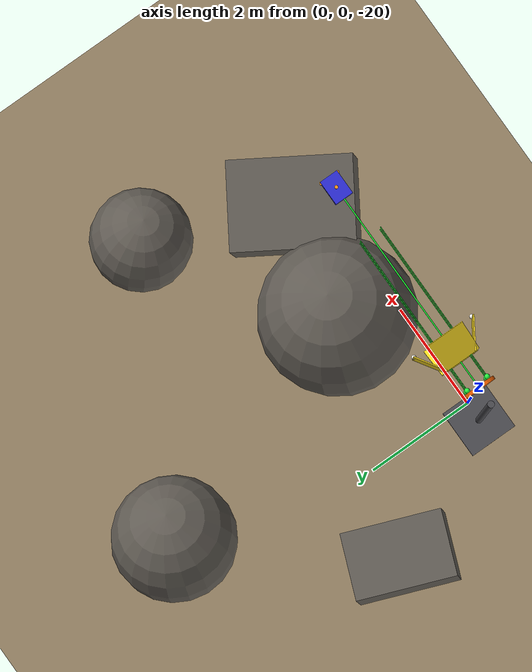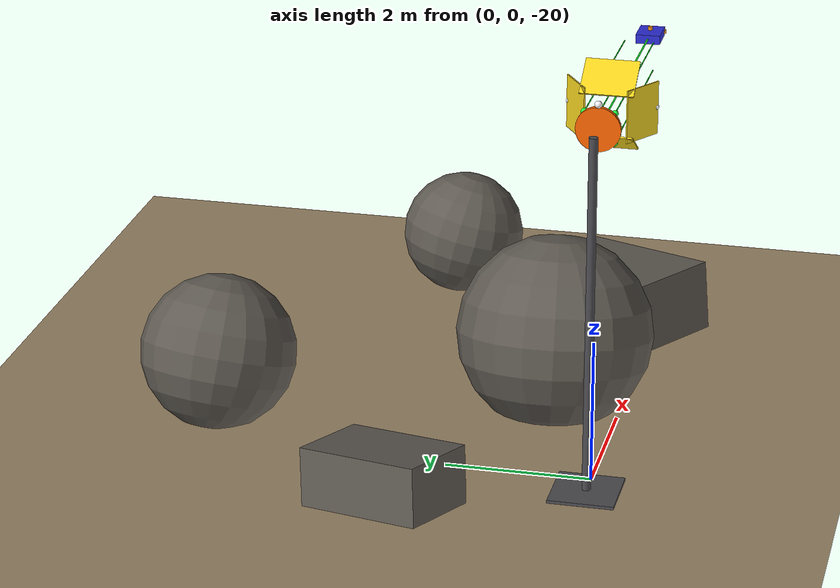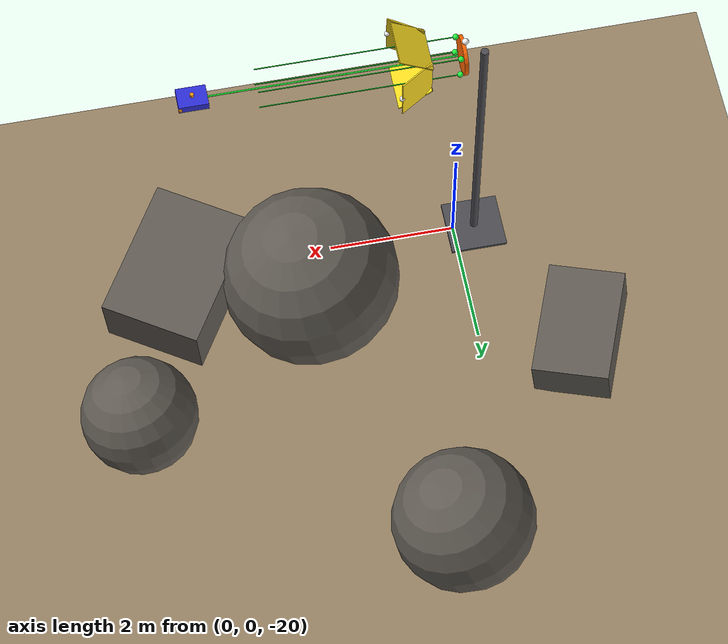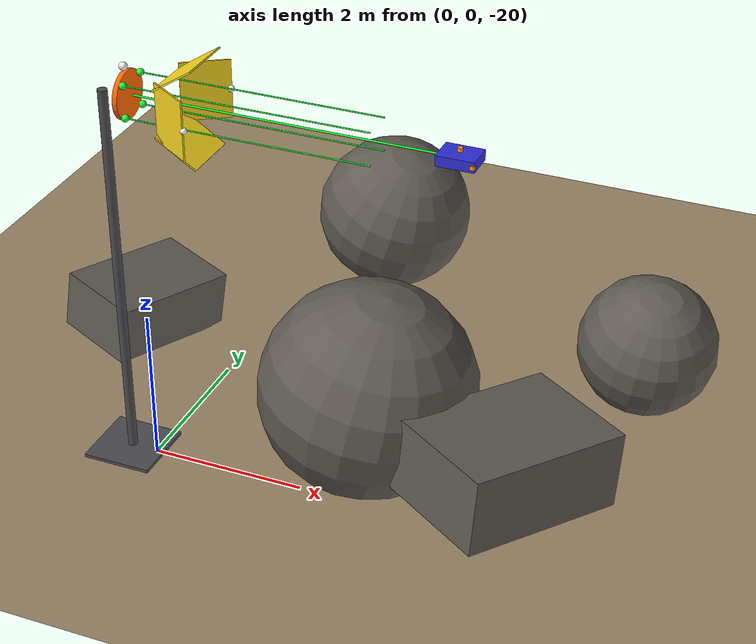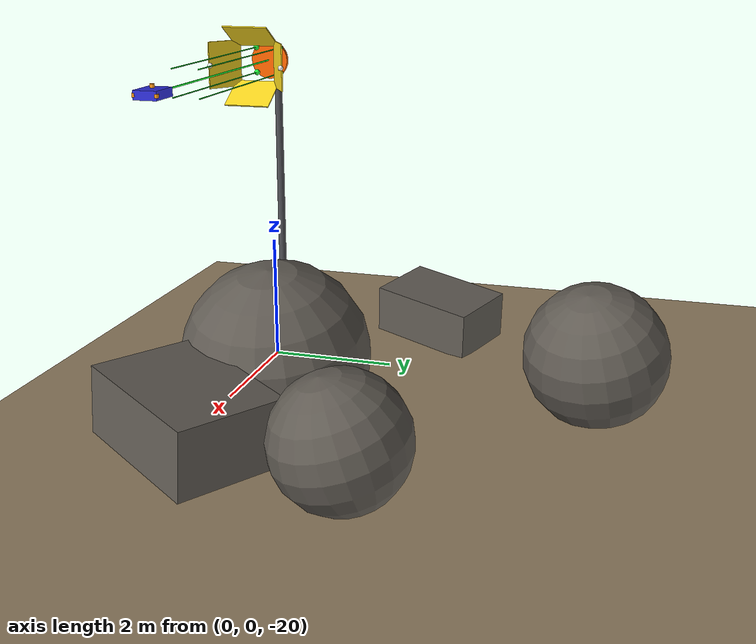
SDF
<?xml version="1.0" ?>
<sdf version="1.9" xmlns:gz="http://gazebosim.org/schema">
  <world name="auv_sim_physics_validated">

    <physics name="0.5ms" type="dart">
      <max_step_size>0.0005</max_step_size>
      <real_time_factor>1</real_time_factor>
    </physics>
    <gravity>0 0 -9.8</gravity>

    <plugin filename="gz-sim-physics-system" name="gz::sim::systems::Physics"/>
    <plugin filename="gz-sim-user-commands-system" name="gz::sim::systems::UserCommands"/>
    <plugin filename="gz-sim-scene-broadcaster-system" name="gz::sim::systems::SceneBroadcaster"/>
    <plugin filename="gz-sim-sensors-system" name="gz::sim::systems::Sensors">
      <render_engine>ogre2</render_engine>
    </plugin>
    <plugin filename="gz-sim-buoyancy-system" name="gz::sim::systems::Buoyancy">
      <uniform_fluid_density>1025</uniform_fluid_density>
    </plugin>
    <plugin filename="gz-sim-imu-system" name="gz::sim::systems::Imu"/>
    <plugin filename="gz-sim-dvl-system" name="gz::sim::systems::DopplerVelocityLogSystem"/>

    <scene>
      <ambient>0.18 0.28 0.36 1</ambient>
      <background>0.03 0.08 0.15 1</background>
      <shadows>true</shadows>
    </scene>

    <light type="directional" name="surface_light">
      <cast_shadows>true</cast_shadows>
      <pose>0 0 0 0 0 0</pose>
      <diffuse>0.55 0.8 0.95 1</diffuse>
      <specular>0.2 0.28 0.35 1</specular>
      <direction>0.05 0.05 -1</direction>
      <intensity>1</intensity>
    </light>

    <light type="directional" name="caustic_fill">
      <cast_shadows>false</cast_shadows>
      <pose>10 0 -10 0 0 0</pose>
      <diffuse>0.1 0.18 0.25 1</diffuse>
      <specular>0 0 0 1</specular>
      <direction>-0.5 0.2 -0.3</direction>
      <intensity>0.5</intensity>
    </light>

    <model name="seabed">
      <static>true</static>
      <pose>0 0 -20 0 0 0</pose>
      <link name="link">
        <collision name="col">
          <geometry><plane><normal>0 0 1</normal><size>200 200</size></plane></geometry>
        </collision>
        <visual name="sand">
          <geometry><plane><normal>0 0 1</normal><size>200 200</size></plane></geometry>
          <material><ambient>0.55 0.5 0.38 1</ambient><diffuse>0.6 0.52 0.4 1</diffuse></material>
        </visual>
      </link>
    </model>

    <model name="rock_a">
      <static>true</static>
      <pose>2.5 1 -19 0.1 0.2 0.5</pose>
      <link name="link">
        <collision name="c">
          <geometry><sphere><radius>1.4</radius></sphere></geometry>
        </collision>
        <visual name="v">
          <geometry><sphere><radius>1.4</radius></sphere></geometry>
          <material><ambient>0.30 0.29 0.27 1</ambient><diffuse>0.38 0.36 0.33 1</diffuse></material>
        </visual>
      </link>
    </model>
    <model name="rock_b">
      <static>true</static>
      <pose>4.5 0.5 -19.2 0 0.1 1</pose>
      <link name="link">
        <collision name="c">
          <geometry><box><size>2.2 1.6 1</size></box></geometry>
        </collision>
        <visual name="v">
          <geometry><box><size>2.2 1.6 1</size></box></geometry>
          <material><ambient>0.30 0.29 0.27 1</ambient><diffuse>0.38 0.36 0.33 1</diffuse></material>
        </visual>
      </link>
    </model>
    <model name="rock_c">
      <static>true</static>
      <pose>5.5 3 -18.8 0.3 0 0.7</pose>
      <link name="link">
        <collision name="c">
          <geometry><sphere><radius>0.9</radius></sphere></geometry>
        </collision>
        <visual name="v">
          <geometry><sphere><radius>0.9</radius></sphere></geometry>
          <material><ambient>0.30 0.29 0.27 1</ambient><diffuse>0.38 0.36 0.33 1</diffuse></material>
        </visual>
      </link>
    </model>
    <model name="rock_d">
      <static>true</static>
      <pose>1 5.5 -19.1 0.2 0.3 0.3</pose>
      <link name="link">
        <collision name="c">
          <geometry><sphere><radius>1.1</radius></sphere></geometry>
        </collision>
        <visual name="v">
          <geometry><sphere><radius>1.1</radius></sphere></geometry>
          <material><ambient>0.30 0.29 0.27 1</ambient><diffuse>0.38 0.36 0.33 1</diffuse></material>
        </visual>
      </link>
    </model>
    <model name="rock_e">
      <static>true</static>
      <pose>-1.5 2.5 -19.5 0.1 0.1 1.2</pose>
      <link name="link">
        <collision name="c">
          <geometry><box><size>1.8 1.2 0.8</size></box></geometry>
        </collision>
        <visual name="v">
          <geometry><box><size>1.8 1.2 0.8</size></box></geometry>
          <material><ambient>0.30 0.29 0.27 1</ambient><diffuse>0.38 0.36 0.33 1</diffuse></material>
        </visual>
      </link>
    </model>

    <!-- Docking station. NOTE: no collision geometry, reproduced from
         the reference. See dock_station.yaml known_discrepancies. -->
    <model name="docking_station">
      <static>true</static>
      <pose>0 0 -15 0 0 0</pose>
      <link name="support">
        <visual name="post">
          <pose>-0.35 0 -2.5 0 0 0</pose>
          <geometry><cylinder><radius>0.06</radius><length>5</length></cylinder></geometry>
          <material><ambient>0.20 0.20 0.22 1</ambient><diffuse>0.30 0.30 0.32 1</diffuse></material>
        </visual>
        <visual name="baseplate">
          <pose>-0.35 0 -5 0 0 0</pose>
          <geometry><box><size>0.9 0.9 0.06</size></box></geometry>
          <material><ambient>0.20 0.20 0.22 1</ambient><diffuse>0.30 0.30 0.32 1</diffuse></material>
        </visual>
      </link>
      <link name="collar">
        <visual name="ring">
          <pose>-0.02 0 0 0 1.5708 0</pose>
          <geometry><cylinder><radius>0.3</radius><length>0.06</length></cylinder></geometry>
          <material><ambient>0.90 0.35 0 1</ambient><diffuse>1 0.40 0 1</diffuse><emissive>0.55 0.18 0 1</emissive></material>
        </visual>
      </link>
      <link name="funnel">
        <visual name="flare_top">
          <pose>0.75 0 0.44 0 -0.569 0</pose>
          <geometry><box><size>0.594 0.72 0.02</size></box></geometry>
          <material><ambient>0.78 0.66 0.08 1</ambient><diffuse>0.98 0.85 0.12 1</diffuse></material>
        </visual>
        <visual name="flare_bottom">
          <pose>0.75 0 -0.44 0 0.569 0</pose>
          <geometry><box><size>0.594 0.72 0.02</size></box></geometry>
          <material><ambient>0.78 0.66 0.08 1</ambient><diffuse>0.98 0.85 0.12 1</diffuse></material>
        </visual>
        <visual name="flare_left">
          <pose>0.75 0.44 0 0 0 0.569</pose>
          <geometry><box><size>0.594 0.02 0.72</size></box></geometry>
          <material><ambient>0.78 0.66 0.08 1</ambient><diffuse>0.98 0.85 0.12 1</diffuse></material>
        </visual>
        <visual name="flare_right">
          <pose>0.75 -0.44 0 0 0 -0.569</pose>
          <geometry><box><size>0.594 0.02 0.72</size></box></geometry>
          <material><ambient>0.78 0.66 0.08 1</ambient><diffuse>0.98 0.85 0.12 1</diffuse></material>
        </visual>
      </link>
      <link name="led_markers">
        <visual name="led_tl">
          <pose>0.05 0.2 0.2 0 0 0</pose>
          <geometry><sphere><radius>0.045</radius></sphere></geometry>
          <material><ambient>0.1 1 0.2 1</ambient><diffuse>0.15 1 0.25 1</diffuse><emissive>0.1 1 0.2 1</emissive></material>
        </visual>
        <visual name="led_tr">
          <pose>0.05 -0.2 0.2 0 0 0</pose>
          <geometry><sphere><radius>0.045</radius></sphere></geometry>
          <material><ambient>0.1 1 0.2 1</ambient><diffuse>0.15 1 0.25 1</diffuse><emissive>0.1 1 0.2 1</emissive></material>
        </visual>
        <visual name="led_bl">
          <pose>0.05 0.2 -0.2 0 0 0</pose>
          <geometry><sphere><radius>0.045</radius></sphere></geometry>
          <material><ambient>0.1 1 0.2 1</ambient><diffuse>0.15 1 0.25 1</diffuse><emissive>0.1 1 0.2 1</emissive></material>
        </visual>
        <visual name="led_br">
          <pose>0.05 -0.2 -0.2 0 0 0</pose>
          <geometry><sphere><radius>0.045</radius></sphere></geometry>
          <material><ambient>0.1 1 0.2 1</ambient><diffuse>0.15 1 0.25 1</diffuse><emissive>0.1 1 0.2 1</emissive></material>
        </visual>
      </link>
      <link name="guidance_lasers">
        <visual name="beam_tl">
          <pose>1.55 0.2 0.2 0 1.5708 0</pose>
          <geometry><cylinder><radius>0.008</radius><length>3</length></cylinder></geometry>
          <material><ambient>0.1 1 0.2 1</ambient><diffuse>0.1 1 0.2 1</diffuse><emissive>0.15 1 0.25 1</emissive></material>
        </visual>
        <visual name="beam_tr">
          <pose>1.55 -0.2 0.2 0 1.5708 0</pose>
          <geometry><cylinder><radius>0.008</radius><length>3</length></cylinder></geometry>
          <material><ambient>0.1 1 0.2 1</ambient><diffuse>0.1 1 0.2 1</diffuse><emissive>0.15 1 0.25 1</emissive></material>
        </visual>
        <visual name="beam_bl">
          <pose>1.55 0.2 -0.2 0 1.5708 0</pose>
          <geometry><cylinder><radius>0.008</radius><length>3</length></cylinder></geometry>
          <material><ambient>0.1 1 0.2 1</ambient><diffuse>0.1 1 0.2 1</diffuse><emissive>0.15 1 0.25 1</emissive></material>
        </visual>
        <visual name="beam_br">
          <pose>1.55 -0.2 -0.2 0 1.5708 0</pose>
          <geometry><cylinder><radius>0.008</radius><length>3</length></cylinder></geometry>
          <material><ambient>0.1 1 0.2 1</ambient><diffuse>0.1 1 0.2 1</diffuse><emissive>0.15 1 0.25 1</emissive></material>
        </visual>
        <visual name="axis_laser">
          <pose>2.05 0 0 0 1.5708 0</pose>
          <geometry><cylinder><radius>0.012</radius><length>4</length></cylinder></geometry>
          <material><ambient>0.1 1 0.2 1</ambient><diffuse>0.1 1 0.2 1</diffuse><emissive>0.15 1 0.25 1</emissive></material>
        </visual>
      </link>
      <link name="beacons">
        <visual name="transponder">
          <pose>-0.05 0 0.34 0 0 0</pose>
          <geometry><sphere><radius>0.05</radius></sphere></geometry>
          <material><ambient>0.9 0.9 1 1</ambient><diffuse>1 1 1 1</diffuse><emissive>0.8 0.8 1 1</emissive></material>
        </visual>
        <visual name="strobe_l">
          <pose>1 0.58 0 0 0 0</pose>
          <geometry><sphere><radius>0.04</radius></sphere></geometry>
          <material><ambient>0.9 0.9 1 1</ambient><diffuse>1 1 1 1</diffuse><emissive>0.8 0.8 1 1</emissive></material>
        </visual>
        <visual name="strobe_r">
          <pose>1 -0.58 0 0 0 0</pose>
          <geometry><sphere><radius>0.04</radius></sphere></geometry>
          <material><ambient>0.9 0.9 1 1</ambient><diffuse>1 1 1 1</diffuse><emissive>0.8 0.8 1 1</emissive></material>
        </visual>
      </link>
      <link name="funnel_collision">
        <collision name="col_flare_top">
          <pose>0.75 0 0.44 0 -0.569 0</pose>
          <geometry><box><size>0.594 0.72 0.02</size></box></geometry>
        </collision>
        <collision name="col_flare_bottom">
          <pose>0.75 0 -0.44 0 0.569 0</pose>
          <geometry><box><size>0.594 0.72 0.02</size></box></geometry>
        </collision>
        <collision name="col_flare_left">
          <pose>0.75 0.44 0 0 0 0.569</pose>
          <geometry><box><size>0.594 0.02 0.72</size></box></geometry>
        </collision>
        <collision name="col_flare_right">
          <pose>0.75 -0.44 0 0 0 -0.569</pose>
          <geometry><box><size>0.594 0.02 0.72</size></box></geometry>
        </collision>
      </link>
      <link name="collar_collision">
        <collision name="col_collar_0">
          <pose>-0.02 0.27 0 0 0 0</pose>
          <geometry><box><size>0.06 0.06 0.22266</size></box></geometry>
        </collision>
        <collision name="col_collar_1">
          <pose>-0.02 0.190919 0.190919 0.785398 0 0</pose>
          <geometry><box><size>0.06 0.06 0.22266</size></box></geometry>
        </collision>
        <collision name="col_collar_2">
          <pose>-0.02 1.65327e-17 0.27 1.5708 0 0</pose>
          <geometry><box><size>0.06 0.06 0.22266</size></box></geometry>
        </collision>
        <collision name="col_collar_3">
          <pose>-0.02 -0.190919 0.190919 2.35619 0 0</pose>
          <geometry><box><size>0.06 0.06 0.22266</size></box></geometry>
        </collision>
        <collision name="col_collar_4">
          <pose>-0.02 -0.27 3.30655e-17 3.14159 0 0</pose>
          <geometry><box><size>0.06 0.06 0.22266</size></box></geometry>
        </collision>
        <collision name="col_collar_5">
          <pose>-0.02 -0.190919 -0.190919 3.92699 0 0</pose>
          <geometry><box><size>0.06 0.06 0.22266</size></box></geometry>
        </collision>
        <collision name="col_collar_6">
          <pose>-0.02 -4.95982e-17 -0.27 4.71239 0 0</pose>
          <geometry><box><size>0.06 0.06 0.22266</size></box></geometry>
        </collision>
        <collision name="col_collar_7">
          <pose>-0.02 0.190919 -0.190919 5.49779 0 0</pose>
          <geometry><box><size>0.06 0.06 0.22266</size></box></geometry>
        </collision>
      </link>
      <link name="support_collision">
        <collision name="col_post">
          <pose>-0.35 0 -2.5 0 0 0</pose>
          <geometry><cylinder><radius>0.06</radius><length>5</length></cylinder></geometry>
        </collision>
        <collision name="col_baseplate">
          <pose>-0.35 0 -5 0 0 0</pose>
          <geometry><box><size>0.9 0.9 0.06</size></box></geometry>
        </collision>
      </link>
    </model>

    <model name="bluerov2_phys">
      <pose>4 0 -15 0 0 3.14159</pose>
      <self_collide>false</self_collide>

      <link name="base_link">
        <inertial>
          <pose>0 0 -0.03 0 0 0</pose>
          <mass>25.421</mass>
          <inertia>
            <ixx>0.26</ixx><iyy>0.52</iyy><izz>0.64</izz>
            <ixy>0</ixy><ixz>0</ixz><iyz>0</iyz>
          </inertia>
        </inertial>
        <collision name="hull_col">
          <pose>0 0 0 0 0 0</pose>
          <geometry><box><size>0.46 0.3 0.18</size></box></geometry>
        </collision>
        <visual name="body">
          <geometry><box><size>0.448 0.338 0.126</size></box></geometry>
          <material><ambient>0.15 0.15 0.75 1</ambient><diffuse>0.18 0.18 0.85 1</diffuse></material>
        </visual>
        <light name="headlight_l" type="spot">
          <pose>0.24 0.08 0 0 0 0</pose>
          <cast_shadows>false</cast_shadows>
          <diffuse>1 0.96 0.85 1</diffuse>
          <specular>0.3 0.3 0.25 1</specular>
          <attenuation><range>7</range><linear>0.15</linear><constant>0.25</constant><quadratic>0.02</quadratic></attenuation>
          <direction>1 0 0</direction>
          <spot><inner_angle>0.3</inner_angle><outer_angle>0.6</outer_angle><falloff>1</falloff></spot>
        </light>
        <light name="headlight_r" type="spot">
          <pose>0.24 -0.08 0 0 0 0</pose>
          <cast_shadows>false</cast_shadows>
          <diffuse>1 0.96 0.85 1</diffuse>
          <specular>0.3 0.3 0.25 1</specular>
          <attenuation><range>7</range><linear>0.15</linear><constant>0.25</constant><quadratic>0.02</quadratic></attenuation>
          <direction>1 0 0</direction>
          <spot><inner_angle>0.3</inner_angle><outer_angle>0.6</outer_angle><falloff>1</falloff></spot>
        </light>
        <sensor name="camera" type="camera">
          <always_on>1</always_on>
          <update_rate>20</update_rate>
          <visualize>true</visualize>
          <topic>/bluerov2_phys/camera</topic>
          <pose>0.23 0 -0.01 0 0.05 0</pose>
          <camera>
            <horizontal_fov>1.047</horizontal_fov>
            <image><width>640</width><height>480</height><format>R8G8B8</format></image>
            <clip><near>0.02</near><far>60</far></clip>
          </camera>
        </sensor>
        <sensor name="fls" type="gpu_lidar">
          <always_on>1</always_on>
          <update_rate>10</update_rate>
          <topic>/bluerov2_phys/fls/raw</topic>
          <pose>0.24 0 0 0 0 0</pose>
          <lidar><scan><horizontal>
            <samples>128</samples><resolution>1</resolution>
            <min_angle>-0.52</min_angle><max_angle>0.52</max_angle>
          </horizontal><vertical>
            <samples>1</samples><resolution>1</resolution><min_angle>0</min_angle><max_angle>0</max_angle>
          </vertical></scan>
          <range><min>0.2</min><max>12</max><resolution>0.01</resolution></range>
          </lidar>
        </sensor>
        <sensor name="imu" type="imu">
          <always_on>1</always_on>
          <update_rate>100</update_rate>
          <topic>/bluerov2_phys/imu</topic>
          <pose>0 0 0 0 0 0</pose>
        </sensor>
        <sensor name="dvl" type="custom" gz:type="dvl">
          <always_on>1</always_on>
          <update_rate>10</update_rate>
          <topic>/bluerov2_phys/dvl</topic>
          <pose>0 0 -0.09 0 0 0</pose>
          <gz:dvl>
            <arrangement degrees="true"><beam id="1"><aperture>2</aperture><rotation>45</rotation><tilt>30</tilt></beam><beam id="2"><aperture>2</aperture><rotation>135</rotation><tilt>30</tilt></beam><beam id="3"><aperture>2</aperture><rotation>225</rotation><tilt>30</tilt></beam><beam id="4"><aperture>2</aperture><rotation>315</rotation><tilt>30</tilt></beam></arrangement>
            <tracking><bottom_mode><when>best</when>
              <noise type="gaussian"><stddev>0.0005</stddev></noise>
              <visualize>false</visualize>
            </bottom_mode></tracking>
          </gz:dvl>
        </sensor>
      </link>

      <link name="prop_left">
        <pose>-0.2 0.16 0 0 0 0</pose>
        <inertial><mass>0.01</mass><inertia><ixx>1e-05</ixx><iyy>1e-05</iyy><izz>1e-05</izz><ixy>0</ixy><ixz>0</ixz><iyz>0</iyz></inertia></inertial>
        <visual name="v">
          <geometry><cylinder><radius>0.03</radius><length>0.05</length></cylinder></geometry>
          <material><ambient>0.9 0.5 0.1 1</ambient><diffuse>1 0.6 0.1 1</diffuse></material>
        </visual>
      </link>
      <joint name="prop_left_joint" type="revolute">
        <parent>base_link</parent><child>prop_left</child>
        <axis><xyz>1 0 0</xyz><limit><lower>-1e16</lower><upper>1e16</upper></limit><dynamics><damping>0</damping></dynamics></axis>
      </joint>
      <link name="prop_right">
        <pose>-0.2 -0.16 0 0 0 0</pose>
        <inertial><mass>0.01</mass><inertia><ixx>1e-05</ixx><iyy>1e-05</iyy><izz>1e-05</izz><ixy>0</ixy><ixz>0</ixz><iyz>0</iyz></inertia></inertial>
        <visual name="v">
          <geometry><cylinder><radius>0.03</radius><length>0.05</length></cylinder></geometry>
          <material><ambient>0.9 0.5 0.1 1</ambient><diffuse>1 0.6 0.1 1</diffuse></material>
        </visual>
      </link>
      <joint name="prop_right_joint" type="revolute">
        <parent>base_link</parent><child>prop_right</child>
        <axis><xyz>1 0 0</xyz><limit><lower>-1e16</lower><upper>1e16</upper></limit><dynamics><damping>0</damping></dynamics></axis>
      </joint>
      <link name="prop_sway">
        <pose>0 0 -0.02 0 0 0</pose>
        <inertial><mass>0.01</mass><inertia><ixx>1e-05</ixx><iyy>1e-05</iyy><izz>1e-05</izz><ixy>0</ixy><ixz>0</ixz><iyz>0</iyz></inertia></inertial>
        <visual name="v">
          <geometry><cylinder><radius>0.03</radius><length>0.05</length></cylinder></geometry>
          <material><ambient>0.9 0.5 0.1 1</ambient><diffuse>1 0.6 0.1 1</diffuse></material>
        </visual>
      </link>
      <joint name="prop_sway_joint" type="revolute">
        <parent>base_link</parent><child>prop_sway</child>
        <axis><xyz>0 1 0</xyz><limit><lower>-1e16</lower><upper>1e16</upper></limit><dynamics><damping>0</damping></dynamics></axis>
      </joint>
      <link name="prop_vert">
        <pose>0 0 0.1 0 0 0</pose>
        <inertial><mass>0.01</mass><inertia><ixx>1e-05</ixx><iyy>1e-05</iyy><izz>1e-05</izz><ixy>0</ixy><ixz>0</ixz><iyz>0</iyz></inertia></inertial>
        <visual name="v">
          <geometry><cylinder><radius>0.03</radius><length>0.05</length></cylinder></geometry>
          <material><ambient>0.9 0.5 0.1 1</ambient><diffuse>1 0.6 0.1 1</diffuse></material>
        </visual>
      </link>
      <joint name="prop_vert_joint" type="revolute">
        <parent>base_link</parent><child>prop_vert</child>
        <axis><xyz>0 0 1</xyz><limit><lower>-1e16</lower><upper>1e16</upper></limit><dynamics><damping>0</damping></dynamics></axis>
      </joint>

      <plugin filename="gz-sim-hydrodynamics-system" name="gz::sim::systems::Hydrodynamics">
        <link_name>base_link</link_name>
        <xDotU>-6.36</xDotU><yDotV>-7.12</yDotV><zDotW>-18.68</zDotW><kDotP>-0.189</kDotP><mDotQ>-0.135</mDotQ><nDotR>-0.222</nDotR>
        <xU>-13.7</xU><yV>-0</yV><zW>-33</zW><kP>-0</kP><mQ>-0.8</mQ><nR>-0.8</nR>
        <xUabsU>-141</xUabsU><yVabsV>-217</yVabsV><zWabsW>-190</zWabsW><kPabsP>-1.19</kPabsP><mQabsQ>-0.47</mQabsQ><nRabsR>-1.5</nRabsR>
      </plugin>
      <plugin filename="gz-sim-thruster-system" name="gz::sim::systems::Thruster">
        <namespace>bluerov2_phys</namespace><joint_name>prop_left_joint</joint_name>
        <thrust_coefficient>0.004422</thrust_coefficient><fluid_density>1025</fluid_density>
        <propeller_diameter>0.1</propeller_diameter>
        <max_thrust_cmd>50</max_thrust_cmd><min_thrust_cmd>-50</min_thrust_cmd>
      </plugin>
      <plugin filename="gz-sim-thruster-system" name="gz::sim::systems::Thruster">
        <namespace>bluerov2_phys</namespace><joint_name>prop_right_joint</joint_name>
        <thrust_coefficient>0.004422</thrust_coefficient><fluid_density>1025</fluid_density>
        <propeller_diameter>0.1</propeller_diameter>
        <max_thrust_cmd>50</max_thrust_cmd><min_thrust_cmd>-50</min_thrust_cmd>
      </plugin>
      <plugin filename="gz-sim-thruster-system" name="gz::sim::systems::Thruster">
        <namespace>bluerov2_phys</namespace><joint_name>prop_sway_joint</joint_name>
        <thrust_coefficient>0.004422</thrust_coefficient><fluid_density>1025</fluid_density>
        <propeller_diameter>0.1</propeller_diameter>
        <max_thrust_cmd>50</max_thrust_cmd><min_thrust_cmd>-50</min_thrust_cmd>
      </plugin>
      <plugin filename="gz-sim-thruster-system" name="gz::sim::systems::Thruster">
        <namespace>bluerov2_phys</namespace><joint_name>prop_vert_joint</joint_name>
        <thrust_coefficient>0.004422</thrust_coefficient><fluid_density>1025</fluid_density>
        <propeller_diameter>0.1</propeller_diameter>
        <max_thrust_cmd>50</max_thrust_cmd><min_thrust_cmd>-50</min_thrust_cmd>
      </plugin>
    </model>

  </world>
</sdf>
